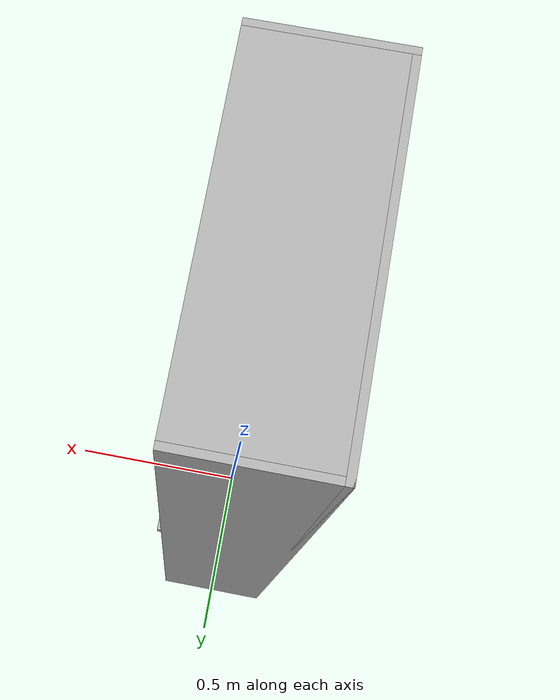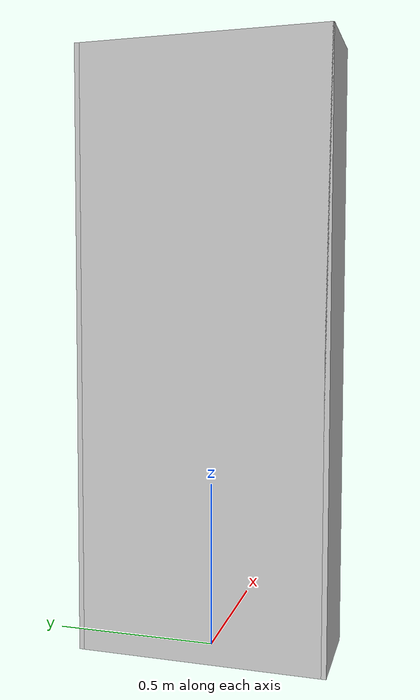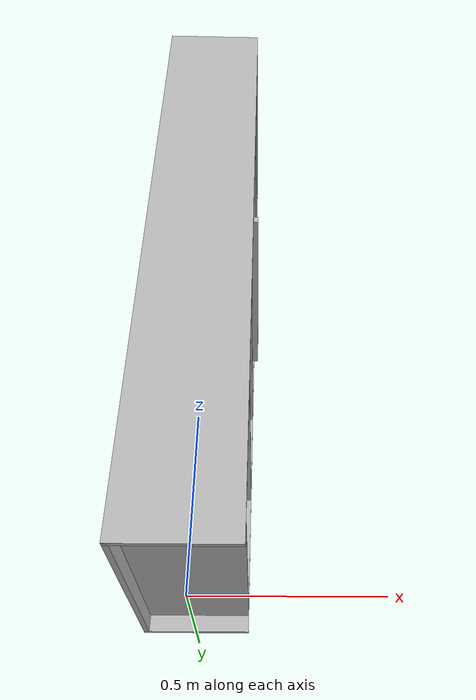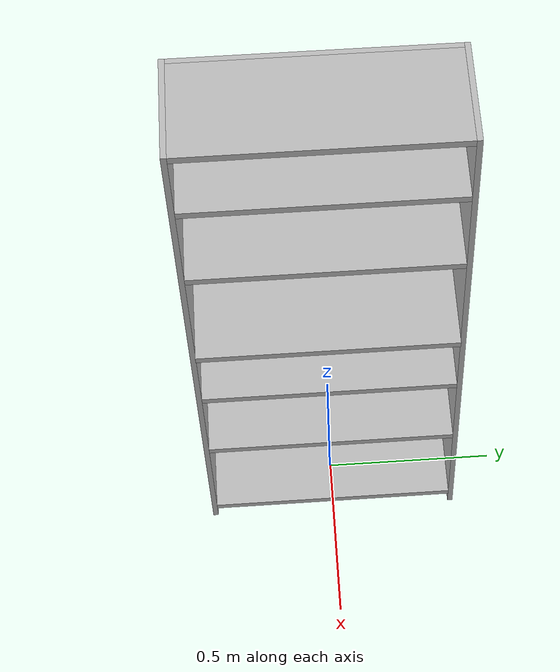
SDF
<?xml version="1.0" ?>
<sdf version="1.6">
  <model name="rpo2023/cabinet">
    <static>true</static>
    <link name="1_link">
      <collision name="1_col">
        <geometry>
          <box>
            <size>0.3 0.015 1.806</size>
          </box>
        </geometry>
      </collision>
      <visual name="1_vis">
        <geometry>
          <box>
            <size>0.3 0.015 1.806</size>
          </box>
        </geometry>
      </visual>
      <pose>0.0 -0.3675 0.903 0 0 0</pose>
    </link>
    <link name="2_link">
      <collision name="2_col">
        <geometry>
          <box>
            <size>0.3 0.015 1.806</size>
          </box>
        </geometry>
      </collision>
      <visual name="2_vis">
        <geometry>
          <box>
            <size>0.3 0.015 1.806</size>
          </box>
        </geometry>
      </visual>
      <pose>0.0 0.3675 0.903 0 0 0</pose>
    </link>
    <link name="3_link">
      <collision name="3_col">
        <geometry>
          <box>
            <size>0.015 0.75 1.806</size>
          </box>
        </geometry>
      </collision>
      <visual name="3_vis">
        <geometry>
          <box>
            <size>0.015 0.75 1.806</size>
          </box>
        </geometry>
      </visual>
      <pose>-0.1425 0.0 0.903 0 0 0</pose>
    </link>
    <link name="4_link">
      <collision name="4_col">
        <geometry>
          <box>
            <size>0.285 0.72 0.02</size>
          </box>
        </geometry>
      </collision>
      <visual name="4_vis">
        <geometry>
          <box>
            <size>0.285 0.72 0.02</size>
          </box>
        </geometry>
      </visual>
      <pose>0.0075 0.0 1.796 0 0 0</pose>
    </link>
    <link name="5_link">
      <collision name="5_col">
        <geometry>
          <box>
            <size>0.285 0.72 0.02</size>
          </box>
        </geometry>
      </collision>
      <visual name="5_vis">
        <geometry>
          <box>
            <size>0.285 0.72 0.02</size>
          </box>
        </geometry>
      </visual>
      <pose>0.0075 0.0 0.055 0 0 0</pose>
    </link>
    <link name="6_link">
      <collision name="6_col">
        <geometry>
          <box>
            <size>0.285 0.72 0.02</size>
          </box>
        </geometry>
      </collision>
      <visual name="6_vis">
        <geometry>
          <box>
            <size>0.285 0.72 0.02</size>
          </box>
        </geometry>
      </visual>
      <pose>0.0075 0.0 0.41 0 0 0</pose>
    </link>
    <link name="7_link">
      <collision name="7_col">
        <geometry>
          <box>
            <size>0.285 0.72 0.02</size>
          </box>
        </geometry>
      </collision>
      <visual name="7_vis">
        <geometry>
          <box>
            <size>0.285 0.72 0.02</size>
          </box>
        </geometry>
      </visual>
      <pose>0.0075 0.0 0.7 0 0 0</pose>
    </link>
    <link name="8_link">
      <collision name="8_col">
        <geometry>
          <box>
            <size>0.285 0.72 0.02</size>
          </box>
        </geometry>
      </collision>
      <visual name="8_vis">
        <geometry>
          <box>
            <size>0.31 0.72 0.02</size>
          </box>
        </geometry>
      </visual>
      <pose>0.00875 0.0 0.94 0 0 0</pose>
    </link>
    <link name="9_link">
      <collision name="9_col">
        <geometry>
          <box>
            <size>0.285 0.72 0.02</size>
          </box>
        </geometry>
      </collision>
      <visual name="9_vis">
        <geometry>
          <box>
            <size>0.285 0.72 0.02</size>
          </box>
        </geometry>
      </visual>
      <pose>0.0075 0.0 1.295 0 0 0</pose>
    </link>
    <link name="10_link">
      <collision name="10_col">
        <geometry>
          <box>
            <size>0.285 0.72 0.02</size>
          </box>
        </geometry>
      </collision>
      <visual name="10_vis">
        <geometry>
          <box>
            <size>0.285 0.72 0.02</size>
          </box>
        </geometry>
      </visual>
      <pose>0.0075 0.0 1.58 0 0 0</pose>
    </link>
    <link name="in_front_of">
      <virtual_volume name="in_front_of_vv">
        <geometry>
          <box>
            <size>0.2 0.55 0.01</size>
          </box>
        </geometry>
        <pose>0.65 0.0 0.005 0 0 0</pose>
      </virtual_volume>
    </link>
    <link name="shelf1">
      <virtual_volume name="shelf1_vv">
        <geometry>
          <box>
            <size>0.265 0.66 0.30</size>
          </box>
        </geometry>
        <pose>0.0075 0.0 0.23 0 0 0</pose>
      </virtual_volume>
    </link>
    <link name="shelf2">
      <virtual_volume name="shelf2_vv">
        <geometry>
          <box>
            <size>0.265 0.66 0.24</size>
          </box>
        </geometry>
        <pose>0.0075 0.0 0.555 0 0 0</pose>
      </virtual_volume>
    </link>
    <link name="shelf3">
      <virtual_volume name="shelf3_vv">
        <geometry>
          <box>
            <size>0.265 0.66 0.18</size>
          </box>
        </geometry>
        <pose>0.0075 0.0 0.815 0 0 0</pose>
      </virtual_volume>
    </link>
    <link name="shelf4">
      <virtual_volume name="shelf4_vv">
        <geometry>
          <box>
            <size>0.265 0.3 0.30</size>
          </box>
        </geometry>
        <pose>0.0075 0.0 1.11 0 0 0</pose>
      </virtual_volume>
    </link>
    <link name="shelf5">
      <virtual_volume name="shelf5_vv">
        <geometry>
          <box>
            <size>0.265 0.66 0.24</size>
          </box>
        </geometry>
        <pose>0.0075 0.0 1.44 0 0 0</pose>
      </virtual_volume>
    </link>
    <link name="shelf6">
      <virtual_volume name="shelf6_vv">
        <geometry>
          <box>
            <size>0.265 0.66 0.18</size>
          </box>
        </geometry>
        <pose>0.0075 0.0 1.69 0 0 0</pose>
      </virtual_volume>
    </link>
  </model>
</sdf>
